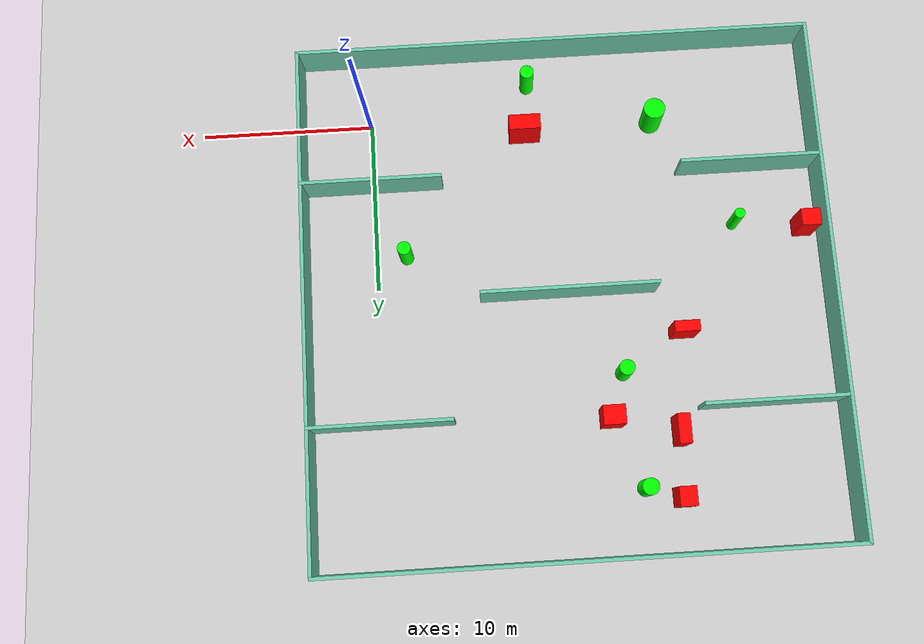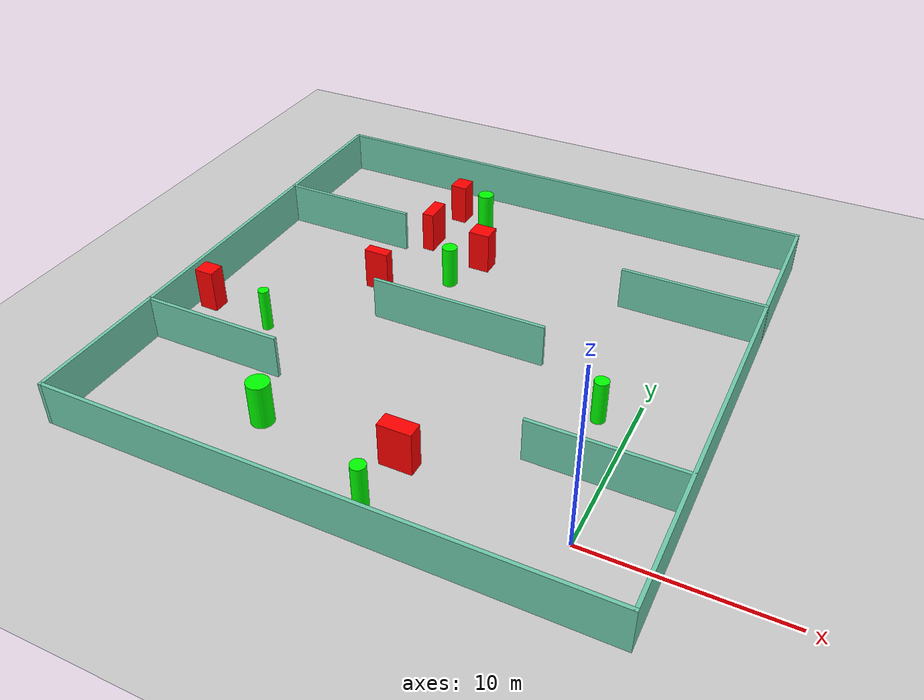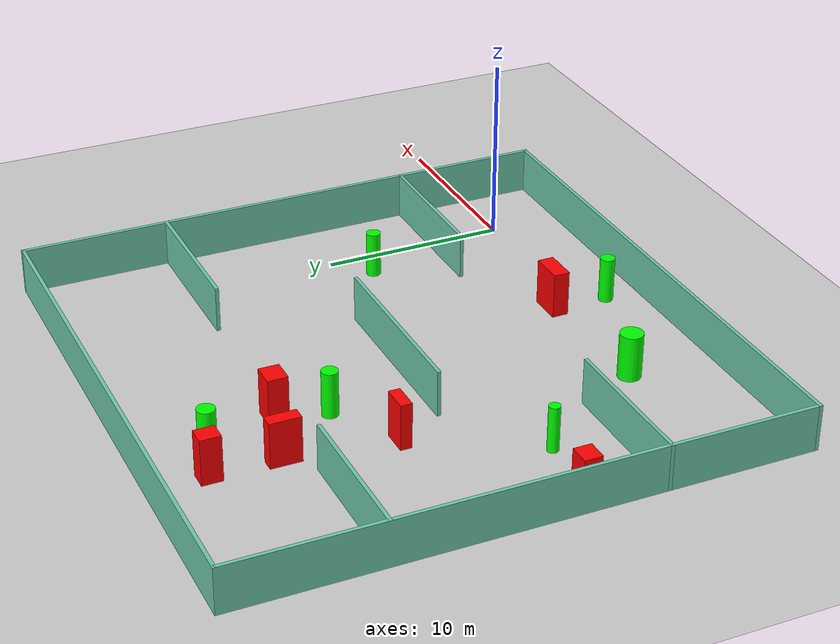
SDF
<sdf version="1.7">
 <world name="default">
  <light name="sun" type="directional">
   <pose>0 0 10 0 -0 0</pose>
   <diffuse>0.8 0.8 0.8 1</diffuse>
   <specular>0.2 0.2 0.2 1</specular>
   <attenuation>
    <range>1000</range>
    <constant>0.9</constant>
    <linear>0.01</linear>
    <quadratic>0.001</quadratic>
   </attenuation>
   <direction>-0.5 0.1 -0.9</direction>
   <spot><inner_angle>0</inner_angle><outer_angle>0</outer_angle><falloff>0</falloff></spot>
  </light>
  <model name="ground_plane">
   <static>1</static>
   <link name="link">
    <collision name="collision">
     <geometry><plane><normal>0 0 1</normal><size>100 100</size></plane></geometry>
     <surface>
      <contact><collide_bitmask>65535</collide_bitmask></contact>
      <friction><ode><mu>100</mu><mu2>50</mu2></ode></friction>
     </surface>
    </collision>
    <visual name="visual">
     <cast_shadows>0</cast_shadows>
     <geometry><plane><normal>0 0 1</normal><size>100 100</size></plane></geometry>
     <material>
      <script><uri>file://media/materials/scripts/gazebo.material</uri><name>Gazebo/Grey</name></script>
     </material>
    </visual>
   </link>
  </model>
  <gravity>0 0 -9.8</gravity>
  <magnetic_field>6e-06 2.3e-05 -4.2e-05</magnetic_field>
  <atmosphere type="adiabatic"/>
  <physics type="ode">
   <max_step_size>0.001</max_step_size>
   <real_time_factor>1</real_time_factor>
   <real_time_update_rate>1000</real_time_update_rate>
  </physics>
  <scene><ambient>0.4 0.4 0.4 1</ambient><background>0.7 0.7 0.7 1</background><shadows>1</shadows></scene>
  <spherical_coordinates>
   <surface_model>EARTH_WGS84</surface_model>
   <latitude_deg>0</latitude_deg>
   <longitude_deg>0</longitude_deg>
   <elevation>0</elevation>
   <heading_deg>0</heading_deg>
  </spherical_coordinates>
  <model name="my_base_walls">
   <link name="Wall_10">
    <collision name="Wall_10_Collision">
     <geometry><box><size>8.2 0.2 2.5</size></box></geometry>
     <pose>0 0 1.25 0 -0 0</pose>
    </collision>
    <visual name="Wall_10_Visual">
     <pose>0 0 1.25 0 -0 0</pose>
     <geometry><box><size>8.2 0.2 2.5</size></box></geometry>
     <material>
      <script><uri>file://media/materials/scripts/gazebo.material</uri><name>Gazebo/Grey</name></script>
      <ambient>0.435294 0.796078 0.67451 1</ambient>
     </material>
     <meta><layer>0</layer></meta>
    </visual>
    <pose>-11 -7 0 0 -0 0</pose>
   </link>
   <link name="Wall_12">
    <collision name="Wall_12_Collision">
     <geometry><box><size>8.2 0.2 2.5</size></box></geometry>
     <pose>0 0 1.25 0 -0 0</pose>
    </collision>
    <visual name="Wall_12_Visual">
     <pose>0 0 1.25 0 -0 0</pose>
     <geometry><box><size>8.2 0.2 2.5</size></box></geometry>
     <material>
      <script><uri>file://media/materials/scripts/gazebo.material</uri><name>Gazebo/Grey</name></script>
      <ambient>0.435294 0.796078 0.67451 1</ambient>
     </material>
     <meta><layer>0</layer></meta>
    </visual>
    <pose>-11 7 0 0 -0 0</pose>
   </link>
   <link name="Wall_14">
    <collision name="Wall_14_Collision">
     <geometry><box><size>8.2 0.2 2.5</size></box></geometry>
     <pose>0 0 1.25 0 -0 0</pose>
    </collision>
    <visual name="Wall_14_Visual">
     <pose>0 0 1.25 0 -0 0</pose>
     <geometry><box><size>8.2 0.2 2.5</size></box></geometry>
     <material>
      <script><uri>file://media/materials/scripts/gazebo.material</uri><name>Gazebo/Grey</name></script>
      <ambient>0.435294 0.796078 0.67451 1</ambient>
     </material>
     <meta><layer>0</layer></meta>
    </visual>
    <pose>11 7 0 0 -0 3.14159</pose>
   </link>
   <link name="Wall_16">
    <collision name="Wall_16_Collision">
     <geometry><box><size>10.2 0.2 2.5</size></box></geometry>
     <pose>0 0 1.25 0 -0 0</pose>
    </collision>
    <visual name="Wall_16_Visual">
     <pose>0 0 1.25 0 -0 0</pose>
     <geometry><box><size>10.2 0.2 2.5</size></box></geometry>
     <material>
      <script><uri>file://media/materials/scripts/gazebo.material</uri><name>Gazebo/Grey</name></script>
      <ambient>0.435294 0.796078 0.67451 1</ambient>
     </material>
     <meta><layer>0</layer></meta>
    </visual>
    <pose>0 0 0 0 -0 3.14159</pose>
   </link>
   <link name="Wall_2">
    <collision name="Wall_2_Collision">
     <geometry><box><size>30.2 0.2 2.5</size></box></geometry>
     <pose>0 0 1.25 0 -0 0</pose>
    </collision>
    <visual name="Wall_2_Visual">
     <pose>0 0 1.25 0 -0 0</pose>
     <geometry><box><size>30.2 0.2 2.5</size></box></geometry>
     <material>
      <script><uri>file://media/materials/scripts/gazebo.material</uri><name>Gazebo/Grey</name></script>
      <ambient>0.435294 0.796078 0.67451 1</ambient>
     </material>
     <meta><layer>0</layer></meta>
    </visual>
    <pose>0 -15 0 0 -0 3.14159</pose>
   </link>
   <link name="Wall_3">
    <collision name="Wall_3_Collision">
     <geometry><box><size>30.2 0.2 2.5</size></box></geometry>
     <pose>0 0 1.25 0 -0 0</pose>
    </collision>
    <visual name="Wall_3_Visual">
     <pose>0 0 1.25 0 -0 0</pose>
     <geometry><box><size>30.2 0.2 2.5</size></box></geometry>
     <material>
      <script><uri>file://media/materials/scripts/gazebo.material</uri><name>Gazebo/Grey</name></script>
      <ambient>0.435294 0.796078 0.67451 1</ambient>
     </material>
     <meta><layer>0</layer></meta>
    </visual>
    <pose>-15 0 0 0 -0 1.5708</pose>
   </link>
   <link name="Wall_4">
    <collision name="Wall_4_Collision">
     <geometry><box><size>30.2 0.2 2.5</size></box></geometry>
     <pose>0 0 1.25 0 -0 0</pose>
    </collision>
    <visual name="Wall_4_Visual">
     <pose>0 0 1.25 0 -0 0</pose>
     <geometry><box><size>30.2 0.2 2.5</size></box></geometry>
     <material>
      <script><uri>file://media/materials/scripts/gazebo.material</uri><name>Gazebo/Grey</name></script>
      <ambient>0.435294 0.796078 0.67451 1</ambient>
     </material>
     <meta><layer>0</layer></meta>
    </visual>
    <pose>0 15 0 0 -0 0</pose>
   </link>
   <link name="Wall_6">
    <collision name="Wall_6_Collision">
     <geometry><box><size>30.2 0.2 2.5</size></box></geometry>
     <pose>0 0 1.25 0 -0 0</pose>
    </collision>
    <visual name="Wall_6_Visual">
     <pose>0 0 1.25 0 -0 0</pose>
     <geometry><box><size>30.2 0.2 2.5</size></box></geometry>
     <material>
      <script><uri>file://media/materials/scripts/gazebo.material</uri><name>Gazebo/Grey</name></script>
      <ambient>0.435294 0.796078 0.67451 1</ambient>
     </material>
     <meta><layer>0</layer></meta>
    </visual>
    <pose>15 0 0 0 -0 1.5708</pose>
   </link>
   <link name="Wall_8">
    <collision name="Wall_8_Collision">
     <geometry><box><size>8.2 0.2 2.5</size></box></geometry>
     <pose>0 0 1.25 0 -0 0</pose>
    </collision>
    <visual name="Wall_8_Visual">
     <pose>0 0 1.25 0 -0 0</pose>
     <geometry><box><size>8.2 0.2 2.5</size></box></geometry>
     <material>
      <script><uri>file://media/materials/scripts/gazebo.material</uri><name>Gazebo/Grey</name></script>
      <ambient>0.435294 0.796078 0.67451 1</ambient>
     </material>
     <meta><layer>0</layer></meta>
    </visual>
    <pose>11 -7 0 0 -0 3.14159</pose>
   </link>
   <static>1</static>
   <pose>-11 11 0 0 -0 0</pose>
  </model>
  <model name="cylinder1">
   <static>1</static>
   <link name="link">
    <inertial>
     <mass>1</mass>
     <inertia><ixx>0.5</ixx><ixy>0</ixy><ixz>0</ixz><iyy>0.5</iyy><iyz>0</iyz><izz>1</izz></inertia>
    </inertial>
    <collision name="collision">
     <geometry><cylinder><radius>0.39800515056328883</radius><length>2.5</length></cylinder></geometry>
    </collision>
    <visual name="visual">
     <geometry><cylinder><radius>0.39800515056328883</radius><length>2.5</length></cylinder></geometry>
     <material>
      <ambient>0 1 0 1</ambient>
      <diffuse>0 1 0 1</diffuse>
      <specular>0.1 0.1 0.1 1</specular>
      <emissive>0 0 0 0</emissive>
     </material>
    </visual>
   </link>
   <pose>-9.420133088294223 -1.9830514583790237 1.25 0 0 0</pose>
  </model>
  <model name="cylinder2">
   <static>1</static>
   <link name="link">
    <inertial>
     <mass>1</mass>
     <inertia><ixx>0.5</ixx><ixy>0</ixy><ixz>0</ixz><iyy>0.5</iyy><iyz>0</iyz><izz>1</izz></inertia>
    </inertial>
    <collision name="collision">
     <geometry><cylinder><radius>0.4738227559005127</radius><length>2.5</length></cylinder></geometry>
    </collision>
    <visual name="visual">
     <geometry><cylinder><radius>0.4738227559005127</radius><length>2.5</length></cylinder></geometry>
     <material>
      <ambient>0 1 0 1</ambient>
      <diffuse>0 1 0 1</diffuse>
      <specular>0.1 0.1 0.1 1</specular>
      <emissive>0 0 0 0</emissive>
     </material>
    </visual>
   </link>
   <pose>-14.534258726432839 22.298613133889557 1.25 0 0 0</pose>
  </model>
  <model name="cylinder3">
   <static>1</static>
   <link name="link">
    <inertial>
     <mass>1</mass>
     <inertia><ixx>0.5</ixx><ixy>0</ixy><ixz>0</ixz><iyy>0.5</iyy><iyz>0</iyz><izz>1</izz></inertia>
    </inertial>
    <collision name="collision">
     <geometry><cylinder><radius>0.4383081789519002</radius><length>2.5</length></cylinder></geometry>
    </collision>
    <visual name="visual">
     <geometry><cylinder><radius>0.4383081789519002</radius><length>2.5</length></cylinder></geometry>
     <material>
      <ambient>0 1 0 1</ambient>
      <diffuse>0 1 0 1</diffuse>
      <specular>0.1 0.1 0.1 1</specular>
      <emissive>0 0 0 0</emissive>
     </material>
    </visual>
   </link>
   <pose>-13.805247270834855 15.754358151193827 1.25 0 0 0</pose>
  </model>
  <model name="cylinder4">
   <static>1</static>
   <link name="link">
    <inertial>
     <mass>1</mass>
     <inertia><ixx>0.5</ixx><ixy>0</ixy><ixz>0</ixz><iyy>0.5</iyy><iyz>0</iyz><izz>1</izz></inertia>
    </inertial>
    <collision name="collision">
     <geometry><cylinder><radius>0.3910693248020647</radius><length>2.5</length></cylinder></geometry>
    </collision>
    <visual name="visual">
     <geometry><cylinder><radius>0.3910693248020647</radius><length>2.5</length></cylinder></geometry>
     <material>
      <ambient>0 1 0 1</ambient>
      <diffuse>0 1 0 1</diffuse>
      <specular>0.1 0.1 0.1 1</specular>
      <emissive>0 0 0 0</emissive>
     </material>
    </visual>
   </link>
   <pose>-1.7674498795204343 8.200148221897342 1.25 0 0 0</pose>
  </model>
  <model name="cylinder5">
   <static>1</static>
   <link name="link">
    <inertial>
     <mass>1</mass>
     <inertia><ixx>0.5</ixx><ixy>0</ixy><ixz>0</ixz><iyy>0.5</iyy><iyz>0</iyz><izz>1</izz></inertia>
    </inertial>
    <collision name="collision">
     <geometry><cylinder><radius>0.6209343286040028</radius><length>2.5</length></cylinder></geometry>
    </collision>
    <visual name="visual">
     <geometry><cylinder><radius>0.6209343286040028</radius><length>2.5</length></cylinder></geometry>
     <material>
      <ambient>0 1 0 1</ambient>
      <diffuse>0 1 0 1</diffuse>
      <specular>0.1 0.1 0.1 1</specular>
      <emissive>0 0 0 0</emissive>
     </material>
    </visual>
   </link>
   <pose>-16.678331410791024 0.7386714999903559 1.25 0 0 0</pose>
  </model>
  <model name="cylinder6">
   <static>1</static>
   <link name="link">
    <inertial>
     <mass>1</mass>
     <inertia><ixx>0.5</ixx><ixy>0</ixy><ixz>0</ixz><iyy>0.5</iyy><iyz>0</iyz><izz>1</izz></inertia>
    </inertial>
    <collision name="collision">
     <geometry><cylinder><radius>0.3016475815472775</radius><length>2.5</length></cylinder></geometry>
    </collision>
    <visual name="visual">
     <geometry><cylinder><radius>0.3016475815472775</radius><length>2.5</length></cylinder></geometry>
     <material>
      <ambient>0 1 0 1</ambient>
      <diffuse>0 1 0 1</diffuse>
      <specular>0.1 0.1 0.1 1</specular>
      <emissive>0 0 0 0</emissive>
     </material>
    </visual>
   </link>
   <pose>-20.961907653025882 7.33777044469997 1.25 0 0 0</pose>
  </model>
  <model name="box1">
   <static>1</static>
   <link name="link">
    <inertial>
     <mass>1</mass>
     <inertia><ixx>0.083</ixx><ixy>0</ixy><ixz>0</ixz><iyy>0.083</iyy><iyz>0</iyz><izz>0.083</izz></inertia>
    </inertial>
    <collision name="collision">
     <geometry><box><size>1.1090967332447885 0.9758256591185116 2.5</size></box></geometry>
    </collision>
    <visual name="visual">
     <geometry><box><size>1.1090967332447885 0.9758256591185116 2.5</size></box></geometry>
     <material>
      <ambient>1 0 0 1</ambient>
      <diffuse>1 0 0 1</diffuse>
      <specular>0.1 0.1 0.1 1</specular>
      <emissive>0 0 0 0</emissive>
     </material>
    </visual>
    <sensor name="my_contact" type="contact">
     <contact><collision>box_collision</collision><topic>__default_topic__</topic></contact>
    </sensor>
   </link>
   <pose>-24.993039345762202 7.784450094341516 1.25 0 0 0</pose>
  </model>
  <model name="box2">
   <static>1</static>
   <link name="link">
    <inertial>
     <mass>1</mass>
     <inertia><ixx>0.083</ixx><ixy>0</ixy><ixz>0</ixz><iyy>0.083</iyy><iyz>0</iyz><izz>0.083</izz></inertia>
    </inertial>
    <collision name="collision">
     <geometry><box><size>0.7111401914847824 1.6609393042443306 2.5</size></box></geometry>
    </collision>
    <visual name="visual">
     <geometry><box><size>0.7111401914847824 1.6609393042443306 2.5</size></box></geometry>
     <material>
      <ambient>1 0 0 1</ambient>
      <diffuse>1 0 0 1</diffuse>
      <specular>0.1 0.1 0.1 1</specular>
      <emissive>0 0 0 0</emissive>
     </material>
    </visual>
    <sensor name="my_contact" type="contact">
     <contact><collision>box_collision</collision><topic>__default_topic__</topic></contact>
    </sensor>
   </link>
   <pose>-16.66140971404521 19.28079625124368 1.25 0 0 0</pose>
  </model>
  <model name="box3">
   <static>1</static>
   <link name="link">
    <inertial>
     <mass>1</mass>
     <inertia><ixx>0.083</ixx><ixy>0</ixy><ixz>0</ixz><iyy>0.083</iyy><iyz>0</iyz><izz>0.083</izz></inertia>
    </inertial>
    <collision name="collision">
     <geometry><box><size>0.975279020494277 1.097153058649954 2.5</size></box></geometry>
    </collision>
    <visual name="visual">
     <geometry><box><size>0.975279020494277 1.097153058649954 2.5</size></box></geometry>
     <material>
      <ambient>1 0 0 1</ambient>
      <diffuse>1 0 0 1</diffuse>
      <specular>0.1 0.1 0.1 1</specular>
      <emissive>0 0 0 0</emissive>
     </material>
    </visual>
    <sensor name="my_contact" type="contact">
     <contact><collision>box_collision</collision><topic>__default_topic__</topic></contact>
    </sensor>
   </link>
   <pose>-16.509327704122036 22.93754778147698 1.25 0 0 0</pose>
  </model>
  <model name="box4">
   <static>1</static>
   <link name="link">
    <inertial>
     <mass>1</mass>
     <inertia><ixx>0.083</ixx><ixy>0</ixy><ixz>0</ixz><iyy>0.083</iyy><iyz>0</iyz><izz>0.083</izz></inertia>
    </inertial>
    <collision name="collision">
     <geometry><box><size>1.2701288738715442 1.0853890361610485 2.5</size></box></geometry>
    </collision>
    <visual name="visual">
     <geometry><box><size>1.2701288738715442 1.0853890361610485 2.5</size></box></geometry>
     <material>
      <ambient>1 0 0 1</ambient>
      <diffuse>1 0 0 1</diffuse>
      <specular>0.1 0.1 0.1 1</specular>
      <emissive>0 0 0 0</emissive>
     </material>
    </visual>
    <sensor name="my_contact" type="contact">
     <contact><collision>box_collision</collision><topic>__default_topic__</topic></contact>
    </sensor>
   </link>
   <pose>-12.89666183711147 18.300006151188853 1.25 0 0 0</pose>
  </model>
  <model name="box5">
   <static>1</static>
   <link name="link">
    <inertial>
     <mass>1</mass>
     <inertia><ixx>0.083</ixx><ixy>0</ixy><ixz>0</ixz><iyy>0.083</iyy><iyz>0</iyz><izz>0.083</izz></inertia>
    </inertial>
    <collision name="collision">
     <geometry><box><size>1.4415799029506657 0.6174405284149398 2.5</size></box></geometry>
    </collision>
    <visual name="visual">
     <geometry><box><size>1.4415799029506657 0.6174405284149398 2.5</size></box></geometry>
     <material>
      <ambient>1 0 0 1</ambient>
      <diffuse>1 0 0 1</diffuse>
      <specular>0.1 0.1 0.1 1</specular>
      <emissive>0 0 0 0</emissive>
     </material>
    </visual>
    <sensor name="my_contact" type="contact">
     <contact><collision>box_collision</collision><topic>__default_topic__</topic></contact>
    </sensor>
   </link>
   <pose>-17.35837303069983 13.627758064432058 1.25 0 0 0</pose>
  </model>
  <model name="box6">
   <static>1</static>
   <link name="link">
    <inertial>
     <mass>1</mass>
     <inertia><ixx>0.083</ixx><ixy>0</ixy><ixz>0</ixz><iyy>0.083</iyy><iyz>0</iyz><izz>0.083</izz></inertia>
    </inertial>
    <collision name="collision">
     <geometry><box><size>1.833265405159115 0.8825856697044968 2.5</size></box></geometry>
    </collision>
    <visual name="visual">
     <geometry><box><size>1.833265405159115 0.8825856697044968 2.5</size></box></geometry>
     <material>
      <ambient>1 0 0 1</ambient>
      <diffuse>1 0 0 1</diffuse>
      <specular>0.1 0.1 0.1 1</specular>
      <emissive>0 0 0 0</emissive>
     </material>
    </visual>
    <sensor name="my_contact" type="contact">
     <contact><collision>box_collision</collision><topic>__default_topic__</topic></contact>
    </sensor>
   </link>
   <pose>-9.096827630556492 1.0720866935763276 1.25 0 0 0</pose>
  </model>
 </world>
</sdf>
